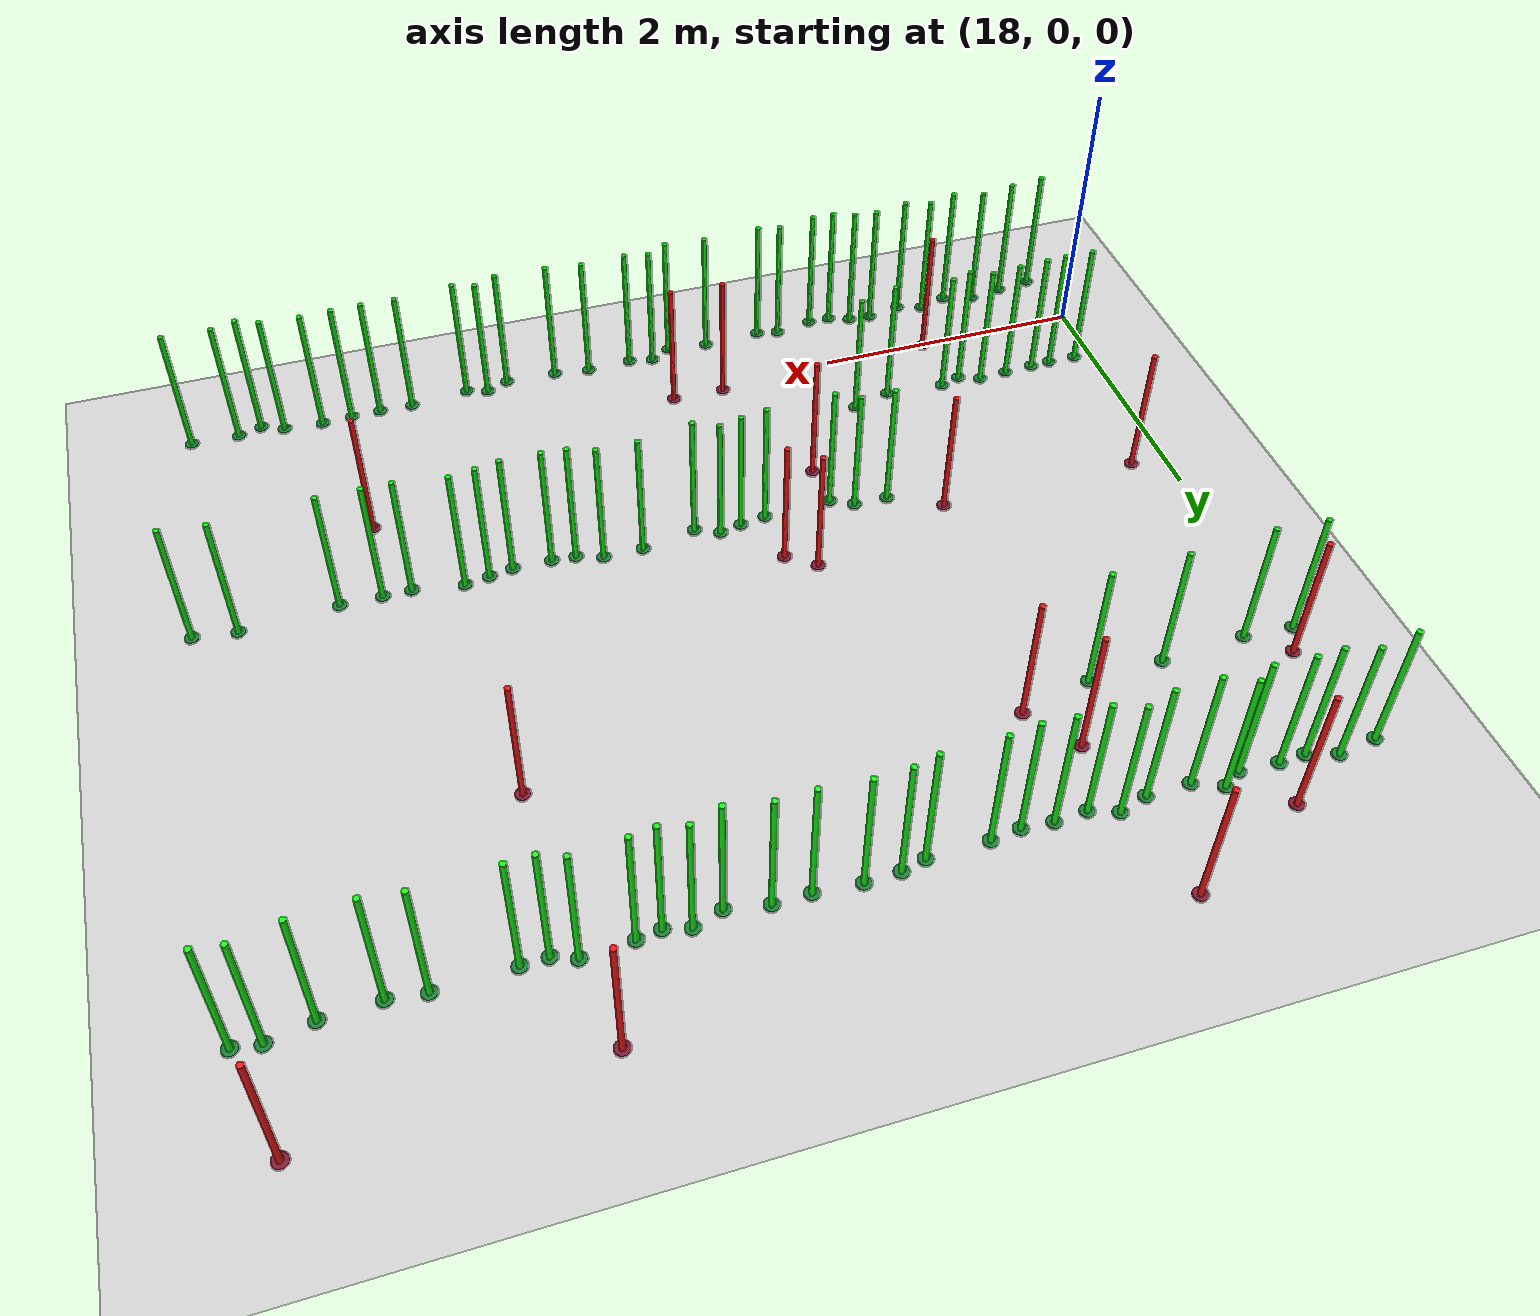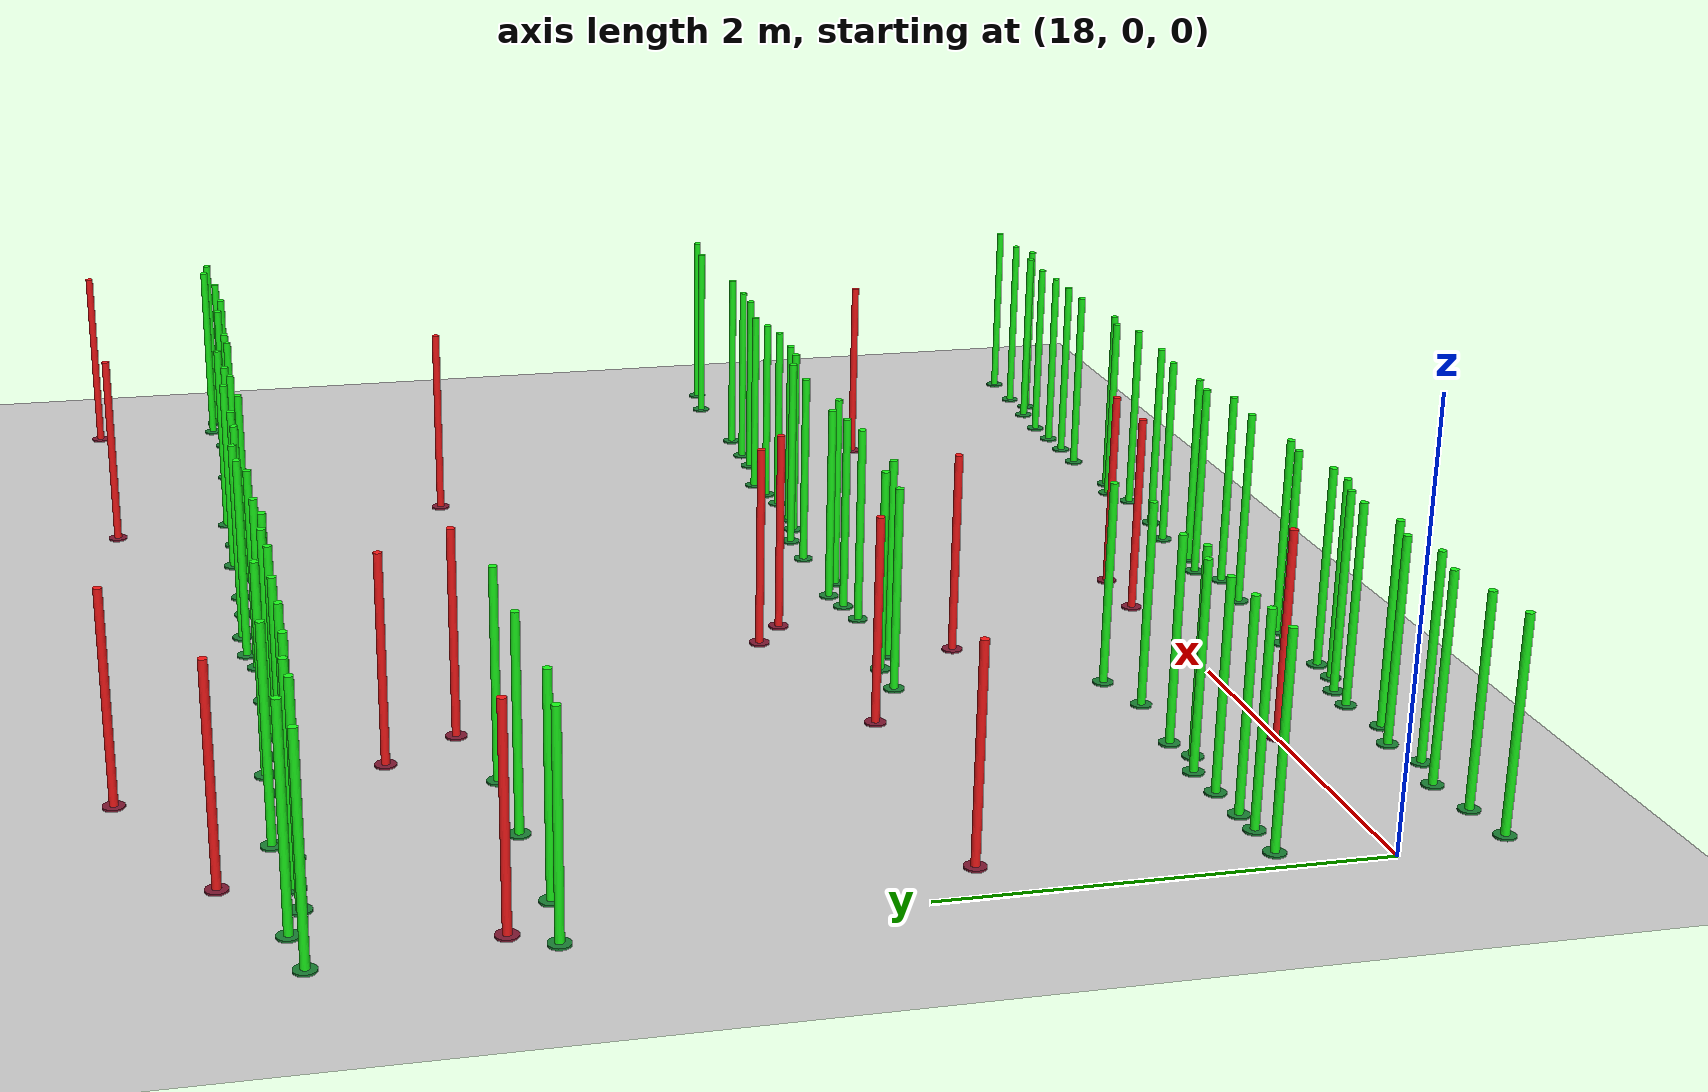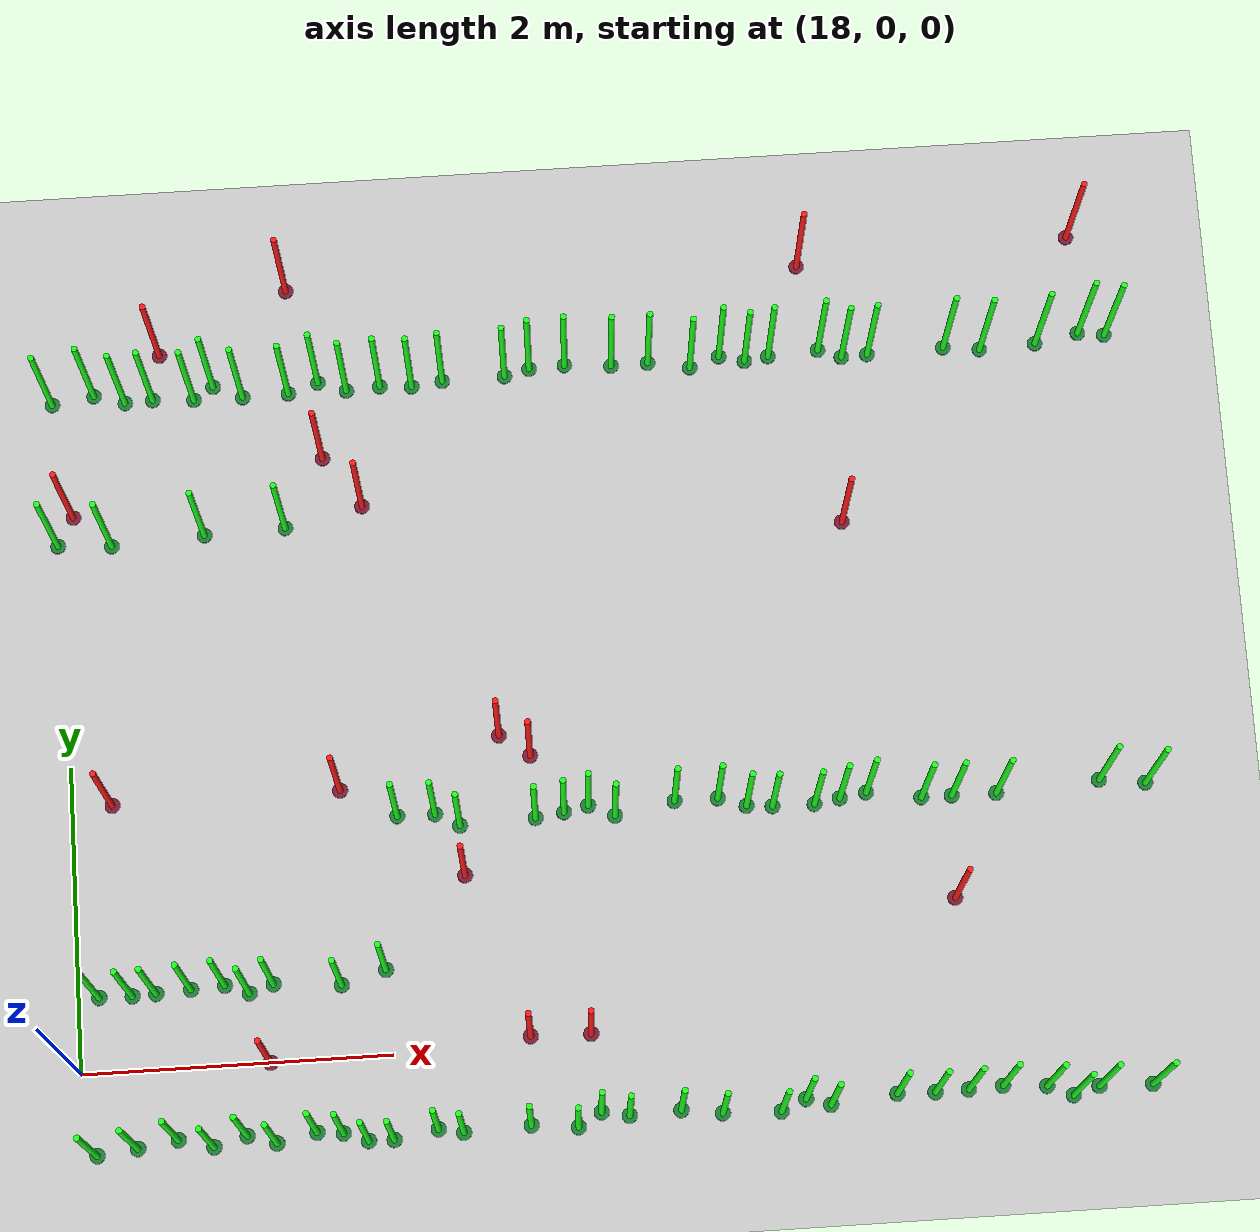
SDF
<sdf version="1.4">
 <world name="default">
  <include><uri>model://ground_plane</uri></include>
  <include><uri>model://sun</uri></include>
  <model name="plantgreen_0_1">
   <include><uri>model://plantgreen</uri></include>
   <pose>19.81203823091419 -0.5423137949120134 0 0 0 0</pose>
  </model>
  <model name="plantgreen_0_7">
   <include><uri>model://plantgreen</uri></include>
   <pose>23.866895483658435 -0.4506276237627671 0 0 0 0</pose>
  </model>
  <model name="plantgreen_0_10">
   <include><uri>model://plantgreen</uri></include>
   <pose>19.48762134669863 -0.4680962726814635 0 0 0 0</pose>
  </model>
  <model name="plantgreen_0_13">
   <include><uri>model://plantgreen</uri></include>
   <pose>20.418234328020617 -0.5281477743409752 0 0 0 0</pose>
  </model>
  <model name="plantgreen_0_14">
   <include><uri>model://plantgreen</uri></include>
   <pose>18.08596066838237 -0.5270354766817292 0 0 0 0</pose>
  </model>
  <model name="plantgreen_0_17">
   <include><uri>model://plantgreen</uri></include>
   <pose>22.762829756107372 -0.5019536259002049 0 0 0 0</pose>
  </model>
  <model name="plantgreen_0_18">
   <include><uri>model://plantgreen</uri></include>
   <pose>19.042270763799607 -0.4612373775054631 0 0 0 0</pose>
  </model>
  <model name="plantgreen_0_19">
   <include><uri>model://plantgreen</uri></include>
   <pose>23.19029616157623 -0.4584318519186918 0 0 0 0</pose>
  </model>
  <model name="plantgreen_0_28">
   <include><uri>model://plantgreen</uri></include>
   <pose>21.4774865416782 -0.48836129178341964 0 0 0 0</pose>
  </model>
  <model name="plantgreen_0_31">
   <include><uri>model://plantgreen</uri></include>
   <pose>24.48127101106708 -0.491753188119538 0 0 0 0</pose>
  </model>
  <model name="plantgreen_0_33">
   <include><uri>model://plantgreen</uri></include>
   <pose>18.829482736696633 -0.5189562248944032 0 0 0 0</pose>
  </model>
  <model name="plantgreen_0_35">
   <include><uri>model://plantgreen</uri></include>
   <pose>21.80781887697687 -0.47462662535368216 0 0 0 0</pose>
  </model>
  <model name="plantgreen_0_38">
   <include><uri>model://plantgreen</uri></include>
   <pose>19.229405555278582 -0.5198234894659789 0 0 0 0</pose>
  </model>
  <model name="plantgreen_0_40">
   <include><uri>model://plantgreen</uri></include>
   <pose>23.647036816314486 -0.46098838576152323 0 0 0 0</pose>
  </model>
  <model name="plantgreen_0_41">
   <include><uri>model://plantgreen</uri></include>
   <pose>18.345355857976045 -0.4988901110596322 0 0 0 0</pose>
  </model>
  <model name="plantgreen_0_50">
   <include><uri>model://plantgreen</uri></include>
   <pose>20.258056818576982 -0.49679533164540135 0 0 0 0</pose>
  </model>
  <model name="plantgreen_0_53">
   <include><uri>model://plantgreen</uri></include>
   <pose>22.07089236547146 -0.5111183156646785 0 0 0 0</pose>
  </model>
  <model name="plantgreen_0_58">
   <include><uri>model://plantgreen</uri></include>
   <pose>24.823760404025048 -0.5004690660871574 0 0 0 0</pose>
  </model>
  <model name="plantgreen_0_67">
   <include><uri>model://plantgreen</uri></include>
   <pose>18.60460428518428 -0.4603358608761211 0 0 0 0</pose>
  </model>
  <model name="plantgreen_0_69">
   <include><uri>model://plantgreen</uri></include>
   <pose>24.148092756691074 -0.4709689691734672 0 0 0 0</pose>
  </model>
  <model name="plantgreen_0_72">
   <include><uri>model://plantgreen</uri></include>
   <pose>19.974552097700983 -0.5457185690727143 0 0 0 0</pose>
  </model>
  <model name="plantgreen_0_79">
   <include><uri>model://plantgreen</uri></include>
   <pose>22.606651994192028 -0.454698350671888 0 0 0 0</pose>
  </model>
  <model name="plantgreen_0_83">
   <include><uri>model://plantgreen</uri></include>
   <pose>23.43231865477278 -0.4649686958583499 0 0 0 0</pose>
  </model>
  <model name="plantgreen_0_84">
   <include><uri>model://plantgreen</uri></include>
   <pose>21.300460261566105 -0.45505943916577773 0 0 0 0</pose>
  </model>
  <model name="plantgreen_0_87">
   <include><uri>model://plantgreen</uri></include>
   <pose>24.311946810904058 -0.5402439148329584 0 0 0 0</pose>
  </model>
  <model name="plantgreen_0_88">
   <include><uri>model://plantgreen</uri></include>
   <pose>19.65433156079387 -0.48436719799011607 0 0 0 0</pose>
  </model>
  <model name="plantgreen_0_90">
   <include><uri>model://plantgreen</uri></include>
   <pose>22.444796072687677 -0.5241304257134742 0 0 0 0</pose>
  </model>
  <model name="plantgreen_0_92">
   <include><uri>model://plantgreen</uri></include>
   <pose>21.148945904698486 -0.5408457693369907 0 0 0 0</pose>
  </model>
  <model name="plantgreen_0_97">
   <include><uri>model://plantgreen</uri></include>
   <pose>20.849613176435223 -0.5103923717139016 0 0 0 0</pose>
  </model>
  <model name="plantgreen_1_9">
   <include><uri>model://plantgreen</uri></include>
   <pose>19.25121207695451 0.5008177371720957 0 0 0 0</pose>
  </model>
  <model name="plantgreen_1_23">
   <include><uri>model://plantgreen</uri></include>
   <pose>18.130966005066853 0.48428617797314993 0 0 0 0</pose>
  </model>
  <model name="plantgreen_1_31">
   <include><uri>model://plantgreen</uri></include>
   <pose>19.687939067998407 0.4672187367123272 0 0 0 0</pose>
  </model>
  <model name="plantgreen_1_39">
   <include><uri>model://plantgreen</uri></include>
   <pose>18.939100129769244 0.5119896454342308 0 0 0 0</pose>
  </model>
  <model name="plantgreen_1_44">
   <include><uri>model://plantgreen</uri></include>
   <pose>19.976754085763844 0.5476829215611887 0 0 0 0</pose>
  </model>
  <model name="plantgreen_1_45">
   <include><uri>model://plantgreen</uri></include>
   <pose>18.72062459377066 0.4993462917321092 0 0 0 0</pose>
  </model>
  <model name="plantgreen_1_66">
   <include><uri>model://plantgreen</uri></include>
   <pose>18.344375221886864 0.4810201492575841 0 0 0 0</pose>
  </model>
  <model name="plantgreen_1_82">
   <include><uri>model://plantgreen</uri></include>
   <pose>18.49698057681073 0.48643860547733325 0 0 0 0</pose>
  </model>
  <model name="plantgreen_1_91">
   <include><uri>model://plantgreen</uri></include>
   <pose>19.095340980301202 0.4510390529844355 0 0 0 0</pose>
  </model>
  <model name="plantgreen_2_6">
   <include><uri>model://plantgreen</uri></include>
   <pose>21.512141287462427 1.4608937094082426 0 0 0 0</pose>
  </model>
  <model name="plantgreen_2_12">
   <include><uri>model://plantgreen</uri></include>
   <pose>23.994496721071794 1.4511873465638834 0 0 0 0</pose>
  </model>
  <model name="plantgreen_2_18">
   <include><uri>model://plantgreen</uri></include>
   <pose>23.704081994348318 1.4540022978143046 0 0 0 0</pose>
  </model>
  <model name="plantgreen_2_28">
   <include><uri>model://plantgreen</uri></include>
   <pose>22.185347705941933 1.532858756090119 0 0 0 0</pose>
  </model>
  <model name="plantgreen_2_31">
   <include><uri>model://plantgreen</uri></include>
   <pose>24.669208321885375 1.495815507134763 0 0 0 0</pose>
  </model>
  <model name="plantgreen_2_37">
   <include><uri>model://plantgreen</uri></include>
   <pose>22.536302104701555 1.4577153173948807 0 0 0 0</pose>
  </model>
  <model name="plantgreen_2_46">
   <include><uri>model://plantgreen</uri></include>
   <pose>24.968387403044126 1.4578668404907833 0 0 0 0</pose>
  </model>
  <model name="plantgreen_2_47">
   <include><uri>model://plantgreen</uri></include>
   <pose>22.809725975578242 1.4536643907324072 0 0 0 0</pose>
  </model>
  <model name="plantgreen_2_50">
   <include><uri>model://plantgreen</uri></include>
   <pose>20.347310291881872 1.544978801122265 0 0 0 0</pose>
  </model>
  <model name="plantgreen_2_57">
   <include><uri>model://plantgreen</uri></include>
   <pose>21.342359282319865 1.5392118241506065 0 0 0 0</pose>
  </model>
  <model name="plantgreen_2_58">
   <include><uri>model://plantgreen</uri></include>
   <pose>20.101520023691787 1.548212694178173 0 0 0 0</pose>
  </model>
  <model name="plantgreen_2_60">
   <include><uri>model://plantgreen</uri></include>
   <pose>23.505911777582096 1.4541704510554745 0 0 0 0</pose>
  </model>
  <model name="plantgreen_2_68">
   <include><uri>model://plantgreen</uri></include>
   <pose>20.99645014844544 1.4785655586028954 0 0 0 0</pose>
  </model>
  <model name="plantgreen_2_69">
   <include><uri>model://plantgreen</uri></include>
   <pose>23.15053269254684 1.5092232326105803 0 0 0 0</pose>
  </model>
  <model name="plantgreen_2_74">
   <include><uri>model://plantgreen</uri></include>
   <pose>21.903820567115925 1.5326870400525485 0 0 0 0</pose>
  </model>
  <model name="plantgreen_2_80">
   <include><uri>model://plantgreen</uri></include>
   <pose>20.505037405851027 1.459756828738018 0 0 0 0</pose>
  </model>
  <model name="plantgreen_2_91">
   <include><uri>model://plantgreen</uri></include>
   <pose>22.368111123460974 1.4704705981192294 0 0 0 0</pose>
  </model>
  <model name="plantgreen_2_93">
   <include><uri>model://plantgreen</uri></include>
   <pose>22.976120202716434 1.4824979460847938 0 0 0 0</pose>
  </model>
  <model name="plantgreen_2_95">
   <include><uri>model://plantgreen</uri></include>
   <pose>21.183303843258745 1.5047103151584793 0 0 0 0</pose>
  </model>
  <model name="plantgreen_4_9">
   <include><uri>model://plantgreen</uri></include>
   <pose>17.96106255771185 3.5059659576943045 0 0 0 0</pose>
  </model>
  <model name="plantgreen_4_45">
   <include><uri>model://plantgreen</uri></include>
   <pose>19.464432891785023 3.534164801628444 0 0 0 0</pose>
  </model>
  <model name="plantgreen_4_49">
   <include><uri>model://plantgreen</uri></include>
   <pose>18.315414325371766 3.4827129300080197 0 0 0 0</pose>
  </model>
  <model name="plantgreen_4_54">
   <include><uri>model://plantgreen</uri></include>
   <pose>18.9290768393871 3.5186812395080063 0 0 0 0</pose>
  </model>
  <model name="plantgreen_5_7">
   <include><uri>model://plantgreen</uri></include>
   <pose>23.910636117654764 4.504461134143122 0 0 0 0</pose>
  </model>
  <model name="plantgreen_5_9">
   <include><uri>model://plantgreen</uri></include>
   <pose>23.227352359919443 4.481989710940482 0 0 0 0</pose>
  </model>
  <model name="plantgreen_5_14">
   <include><uri>model://plantgreen</uri></include>
   <pose>24.153476862853104 4.475852622388742 0 0 0 0</pose>
  </model>
  <model name="plantgreen_5_18">
   <include><uri>model://plantgreen</uri></include>
   <pose>23.40071334133693 4.489944580871124 0 0 0 0</pose>
  </model>
  <model name="plantgreen_5_19">
   <include><uri>model://plantgreen</uri></include>
   <pose>18.895597281945882 4.460098710567088 0 0 0 0</pose>
  </model>
  <model name="plantgreen_5_22">
   <include><uri>model://plantgreen</uri></include>
   <pose>21.932654533499406 4.523789024257977 0 0 0 0</pose>
  </model>
  <model name="plantgreen_5_23">
   <include><uri>model://plantgreen</uri></include>
   <pose>20.349753582491186 4.4598881087547895 0 0 0 0</pose>
  </model>
  <model name="plantgreen_5_25">
   <include><uri>model://plantgreen</uri></include>
   <pose>23.072809397108163 4.541015370782596 0 0 0 0</pose>
  </model>
  <model name="plantgreen_5_27">
   <include><uri>model://plantgreen</uri></include>
   <pose>24.526195305920552 4.493353608712335 0 0 0 0</pose>
  </model>
  <model name="plantgreen_5_31">
   <include><uri>model://plantgreen</uri></include>
   <pose>21.138609413449814 4.533439351152056 0 0 0 0</pose>
  </model>
  <model name="plantgreen_5_32">
   <include><uri>model://plantgreen</uri></include>
   <pose>20.971816819256382 4.492299805039485 0 0 0 0</pose>
  </model>
  <model name="plantgreen_5_36">
   <include><uri>model://plantgreen</uri></include>
   <pose>19.726784534522356 4.5270612708418 0 0 0 0</pose>
  </model>
  <model name="plantgreen_5_39">
   <include><uri>model://plantgreen</uri></include>
   <pose>22.57844321165073 4.496025914073122 0 0 0 0</pose>
  </model>
  <model name="plantgreen_5_40">
   <include><uri>model://plantgreen</uri></include>
   <pose>18.622601725473668 4.47621158847058 0 0 0 0</pose>
  </model>
  <model name="plantgreen_5_41">
   <include><uri>model://plantgreen</uri></include>
   <pose>18.232030698070684 4.527521296372955 0 0 0 0</pose>
  </model>
  <model name="plantgreen_5_42">
   <include><uri>model://plantgreen</uri></include>
   <pose>21.68664304611914 4.519643218564685 0 0 0 0</pose>
  </model>
  <model name="plantgreen_5_43">
   <include><uri>model://plantgreen</uri></include>
   <pose>17.952853043562204 4.483682959133612 0 0 0 0</pose>
  </model>
  <model name="plantgreen_5_46">
   <include><uri>model://plantgreen</uri></include>
   <pose>20.1381550689526 4.474212410633046 0 0 0 0</pose>
  </model>
  <model name="plantgreen_5_47">
   <include><uri>model://plantgreen</uri></include>
   <pose>19.221253817265993 4.457352730058329 0 0 0 0</pose>
  </model>
  <model name="plantgreen_5_54">
   <include><uri>model://plantgreen</uri></include>
   <pose>22.737730978389877 4.518675558114104 0 0 0 0</pose>
  </model>
  <model name="plantgreen_5_55">
   <include><uri>model://plantgreen</uri></include>
   <pose>18.438016899236008 4.466808603117305 0 0 0 0</pose>
  </model>
  <model name="plantgreen_5_60">
   <include><uri>model://plantgreen</uri></include>
   <pose>19.52640279583837 4.464461087484937 0 0 0 0</pose>
  </model>
  <model name="plantgreen_5_65">
   <include><uri>model://plantgreen</uri></include>
   <pose>22.21081299614501 4.472999014424296 0 0 0 0</pose>
  </model>
  <model name="plantgreen_5_66">
   <include><uri>model://plantgreen</uri></include>
   <pose>24.994894310578566 4.523658755690637 0 0 0 0</pose>
  </model>
  <model name="plantgreen_5_78">
   <include><uri>model://plantgreen</uri></include>
   <pose>22.409353149859935 4.538210353734539 0 0 0 0</pose>
  </model>
  <model name="plantgreen_5_79">
   <include><uri>model://plantgreen</uri></include>
   <pose>20.555491549580157 4.486064777400856 0 0 0 0</pose>
  </model>
  <model name="plantgreen_5_84">
   <include><uri>model://plantgreen</uri></include>
   <pose>21.376073135675597 4.543203277944946 0 0 0 0</pose>
  </model>
  <model name="plantgreen_5_87">
   <include><uri>model://plantgreen</uri></include>
   <pose>19.027178222954017 4.542246435818053 0 0 0 0</pose>
  </model>
  <model name="plantgreen_5_89">
   <include><uri>model://plantgreen</uri></include>
   <pose>24.81851298818107 4.548397622021704 0 0 0 0</pose>
  </model>
  <model name="plantgreen_5_93">
   <include><uri>model://plantgreen</uri></include>
   <pose>19.91380262578782 4.45890980266501 0 0 0 0</pose>
  </model>
  <model name="plantred_8">
   <include><uri>model://plantred</uri></include>
   <pose>23.668852658597068 0.780556342863725 0 0 0 0</pose>
  </model>
  <model name="plantred_14">
   <include><uri>model://plantred</uri></include>
   <pose>18.258981277519922 1.7356093847665448 0 0 0 0</pose>
  </model>
  <model name="plantred_16">
   <include><uri>model://plantred</uri></include>
   <pose>24.80399451812945 5.228153572159114 0 0 0 0</pose>
  </model>
  <model name="plantred_19">
   <include><uri>model://plantred</uri></include>
   <pose>22.975349432943254 5.138189802740404 0 0 0 0</pose>
  </model>
  <model name="plantred_28">
   <include><uri>model://plantred</uri></include>
   <pose>20.986527989790233 1.8938457096046635 0 0 0 0</pose>
  </model>
  <model name="plantred_46">
   <include><uri>model://plantred</uri></include>
   <pose>18.677913882266047 4.783770121693926 0 0 0 0</pose>
  </model>
  <model name="plantred_50">
   <include><uri>model://plantred</uri></include>
   <pose>20.791128932076404 2.040583487565244 0 0 0 0</pose>
  </model>
  <model name="plantred_64">
   <include><uri>model://plantred</uri></include>
   <pose>19.73963253230785 1.741753201446367 0 0 0 0</pose>
  </model>
  <model name="plantred_65">
   <include><uri>model://plantred</uri></include>
   <pose>20.519179591155094 1.130734213354924 0 0 0 0</pose>
  </model>
  <model name="plantred_75">
   <include><uri>model://plantred</uri></include>
   <pose>19.21115284967097 -0.003172312700888247 0 0 0 0</pose>
  </model>
  <model name="plantred_76">
   <include><uri>model://plantred</uri></include>
   <pose>20.879041174678406 0.05927875162706109 0 0 0 0</pose>
  </model>
  <model name="plantred_82">
   <include><uri>model://plantred</uri></include>
   <pose>19.541479793747882 5.183854690185861 0 0 0 0</pose>
  </model>
  <model name="plantred_83">
   <include><uri>model://plantred</uri></include>
   <pose>19.732125693786983 3.9984391467056124 0 0 0 0</pose>
  </model>
  <model name="plantred_85">
   <include><uri>model://plantred</uri></include>
   <pose>18.068244299031893 3.695235773676618 0 0 0 0</pose>
  </model>
  <model name="plantred_90">
   <include><uri>model://plantred</uri></include>
   <pose>21.26639301489868 0.05032540707166738 0 0 0 0</pose>
  </model>
  <model name="plantred_93">
   <include><uri>model://plantred</uri></include>
   <pose>19.977764825923806 3.6514581565400794 0 0 0 0</pose>
  </model>
  <model name="plantred_98">
   <include><uri>model://plantred</uri></include>
   <pose>23.13960089991324 3.3402673795455904 0 0 0 0</pose>
  </model>
 </world>
</sdf>
